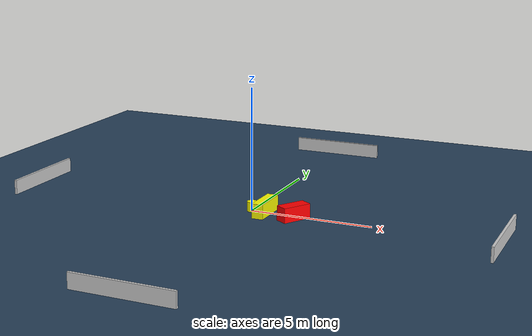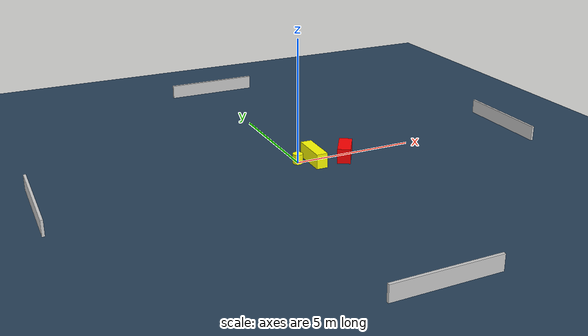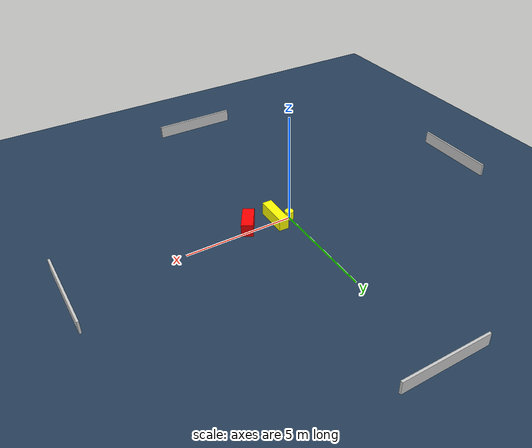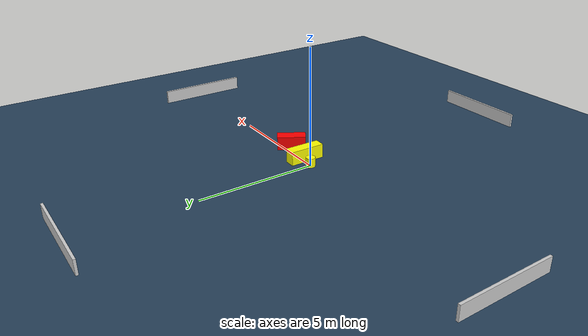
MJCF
<?xml version="1.0" ?>
<mujoco model="generated_environment">
  <option timestep="0.01" integrator="RK4" cone="elliptic"/>
  <default>
    <geom density="1"/>
  </default>
  <asset>
    <texture builtin="gradient" height="3072" name="skybox" rgb1="0.3 0.5 0.7" rgb2="0 0 0" type="skybox" width="512"/>
    <texture builtin="checker" height="300" name="groundplane" rgb1="0.2 0.3 0.4" rgb2="0.1 0.2 0.3" type="2d" width="300"/>
    <material name="groundplane" reflectance="0.2" texrepeat="5 5" texture="groundplane"/>
  </asset>
  <worldbody>
    <light dir="0 0 -1" directional="true" pos="0 0 1.5"/>
    <geom condim="3" friction="0.5 0.005 0.001" material="groundplane" name="floor" pos="0 0 0" size="0 0 0.05" type="plane"/>
    <body name="walls">
      <geom name="wall_1" condim="4" pos="-10.0 0.0 0.3" rgba="0.800000011920929 0.800000011920929 0.800000011920929 1.0" size="0.05 2.0 0.3" type="box"/>
      <geom name="wall_2" condim="4" pos="10.0 0.0 0.3" rgba="0.800000011920929 0.800000011920929 0.800000011920929 1.0" size="0.05 2.0 0.3" type="box"/>
      <geom name="wall_3" condim="4" pos="0.0 -10.0 0.3" rgba="0.800000011920929 0.800000011920929 0.800000011920929 1.0" size="2.0 0.05 0.3" type="box"/>
      <geom name="wall_4" condim="4" pos="0.0 10.0 0.3" rgba="0.800000011920929 0.800000011920929 0.800000011920929 1.0" size="2.0 0.05 0.3" type="box"/>
    </body>
    <body name="robot">
      <joint name="joint_x" type="slide" pos="0 0 0" axis="1 0 0"/>
      <joint name="joint_y" type="slide" pos="0 0 0" axis="0 1 0"/>
      <geom name="robot" type="cylinder" pos="0.0 0.0 0.2" size="0.2 0.2 0.0" mass="5.0" friction="1.0 0.005 0.0001" condim="4" rgba="1.0 1.0 0.0 1.0"/>
    </body>
    <body name="obstacle_1_movable">
      <geom name="obstacle_1_movable" condim="4" pos="0.6335612722919404 -0.1424333211079887 0.3" euler="0 0 179.10060937399447" friction="0.0 0.005 0.001" rgba="1.0 1.0 0.0 1.0" size="0.23045818226555262 0.7538806258481046 0.3" type="box" mass="0.1"/>
      <joint type="free"/>
    </body>
    <body name="obstacle_2_static">
      <geom name="obstacle_2_static" condim="4" pos="1.9201684922341726 -0.31945917011468183 0.3" euler="0 0 58.27542216640687" friction="0.0 0.005 0.001" rgba="1.0 0.0 0.0 1.0" size="0.6089619624040636 0.26251839130638766 0.3" type="box"/>
    </body>
  </worldbody>
  <actuator>
    <motor name="actuator_x" joint="joint_x" gear="1" ctrlrange="-1 1"/>
    <motor name="actuator_y" joint="joint_y" gear="1" ctrlrange="-1 1"/>
  </actuator>
</mujoco>
